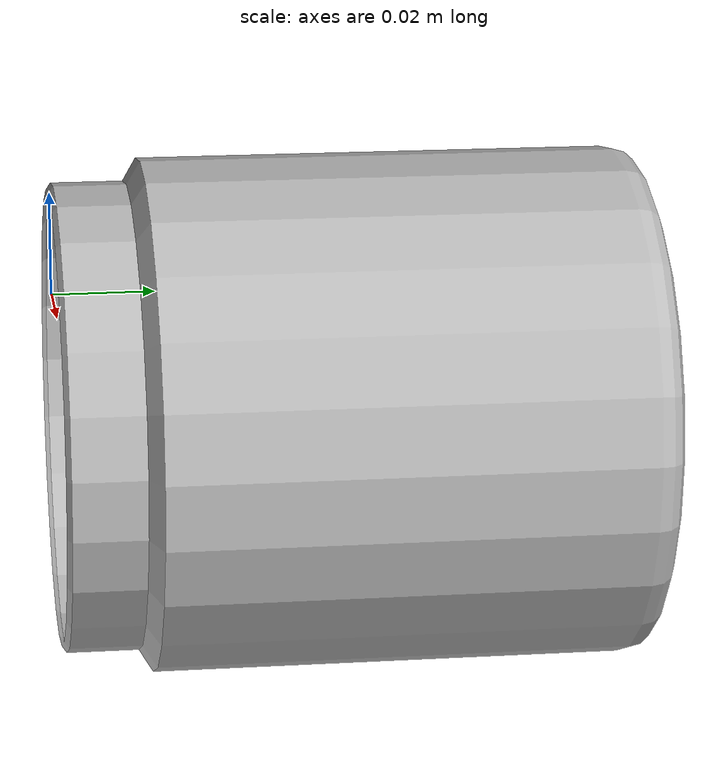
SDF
<?xml version="1.0" ?>
<sdf version="1.5">
  <model name="plant_pot">
    <static>true</static>
    <link name="link">
      <pose>0 0 0 0 0 0</pose>

      <collision name="collision">
        <geometry>
          <mesh>
            <uri>model://pot/meshes/pot_resized.obj</uri>
          </mesh>
        </geometry>
        <surface>
          <contact>
            <ode/>
          </contact>
          <bounce/>
          <friction>
            <ode>
              <mu>0.2</mu>
              <mu2>0.2</mu2>
            </ode>
            <ode/>
          </friction>
        </surface>
      </collision>

      <inertial>
        <pose>0 0 0 0 0 0</pose>
        <mass>1</mass>
        <inertia>
          <ixx>1</ixx>
          <ixy>0</ixy>
          <ixz>0</ixz>
          <iyy>1</iyy>
          <iyz>0</iyz>
          <izz>1</izz>
        </inertia>
      </inertial>

      <visual name="visual_abcedf">
        <geometry>
          <mesh>
            <uri>model://pot/meshes/pot_resized.obj</uri>
          </mesh>
        </geometry>
        <material>
          <script>
            <uri>model://pot/materials/scripts</uri>
            <uri>model://pot/materials/textures</uri>
            <name>plant_pot/Diffuse</name>
          </script>
        </material>
      </visual>
    </link>
  </model>
</sdf>
